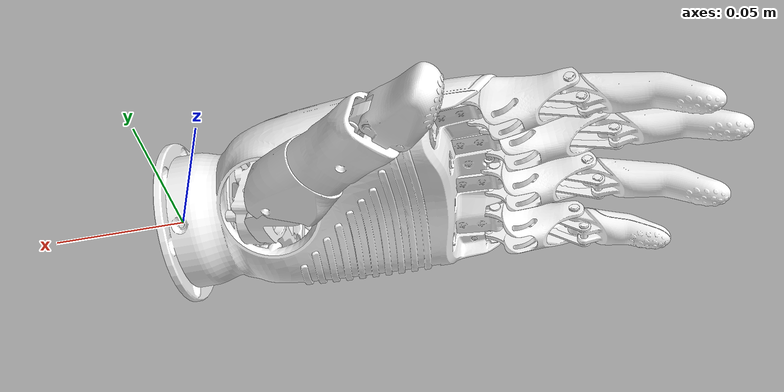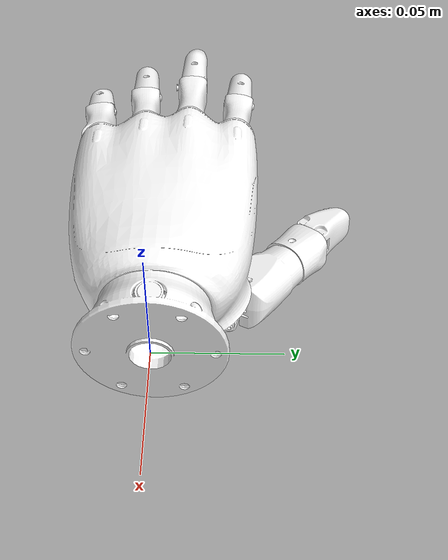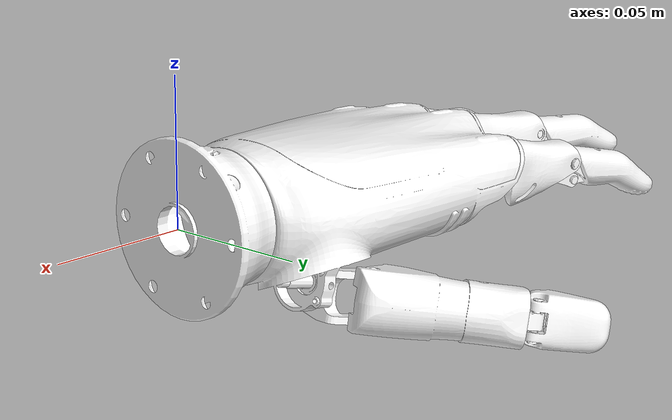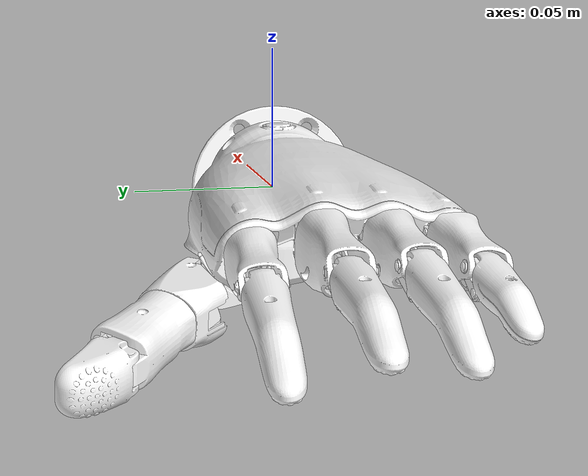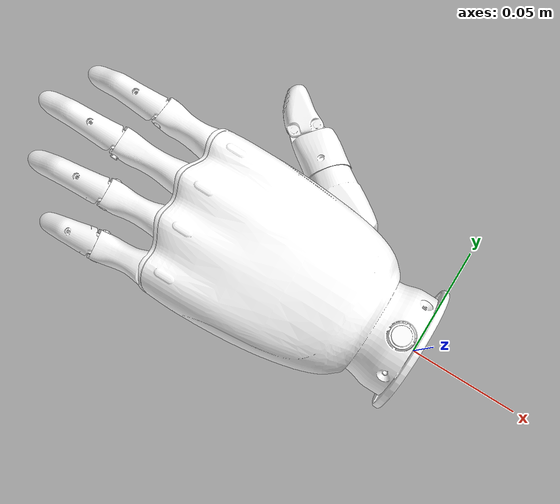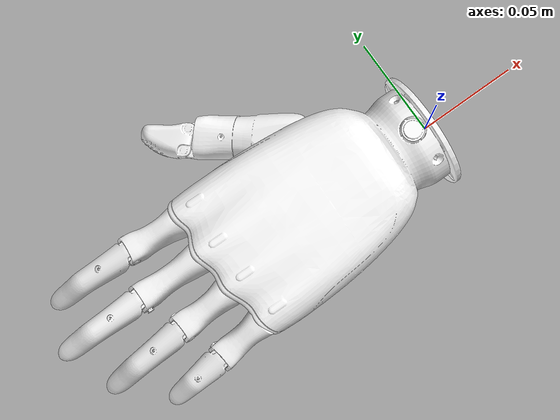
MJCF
<mujoco model="rohand_left">
  <compiler angle="radian"/>

  <asset>
    <mesh name="base_link" content_type="model/stl" file="../assets/meshes_l/base_link.STL"/>
    <mesh name="if_proximal_link" content_type="model/stl" file="../assets/meshes_l/if_proximal_link.STL"/>
    <mesh name="if_distal_link" content_type="model/stl" file="../assets/meshes_l/if_distal_link.STL"/>
    <mesh name="if_connecting_link" content_type="model/stl" file="../assets/meshes_l/if_connecting_link.STL"/>
    <mesh name="mf_proximal_link" content_type="model/stl" file="../assets/meshes_l/mf_proximal_link.STL"/>
    <mesh name="mf_distal_link" content_type="model/stl" file="../assets/meshes_l/mf_distal_link.STL"/>
    <mesh name="mf_connecting_link" content_type="model/stl" file="../assets/meshes_l/mf_connecting_link.STL"/>
    <mesh name="rf_proximal_link" content_type="model/stl" file="../assets/meshes_l/rf_proximal_link.STL"/>
    <mesh name="rf_distal_link" content_type="model/stl" file="../assets/meshes_l/rf_distal_link.STL"/>
    <mesh name="rf_connecting_link" content_type="model/stl" file="../assets/meshes_l/rf_connecting_link.STL"/>
    <mesh name="lf_proximal_link" content_type="model/stl" file="../assets/meshes_l/lf_proximal_link.STL"/>
    <mesh name="lf_distal_link" content_type="model/stl" file="../assets/meshes_l/lf_distal_link.STL"/>
    <mesh name="lf_connecting_link" content_type="model/stl" file="../assets/meshes_l/lf_connecting_link.STL"/>
    <mesh name="th_root_link" content_type="model/stl" file="../assets/meshes_l/th_root_link.STL"/>
    <mesh name="th_slider_connecting_link" content_type="model/stl" file="../assets/meshes_l/th_slider_connecting_link.STL"/>
    <mesh name="th_slider_link" content_type="model/stl" file="../assets/meshes_l/th_slider_link.STL"/>
    <mesh name="th_connecting_link" content_type="model/stl" file="../assets/meshes_l/th_connecting_link.STL"/>
    <mesh name="th_distal_link" content_type="model/stl" file="../assets/meshes_l/th_distal_link.STL"/>
    <mesh name="th_proximal_link" content_type="model/stl" file="../assets/meshes_l/th_proximal_link.STL"/>
  </asset>

  <worldbody>
    <body name="base_link" gravcomp="1">
      <geom type="mesh" rgba="1 1 1 1" mesh="base_link"/>
    </body>
    <body name="if_proximal_link" pos="-0.112403 0.0377703 0.001883" quat="0 1 0 0">
      <inertial pos="-0.0180485 0.00589124 0.00162501" quat="-0.00108635 0.672811 0.0602613 0.737355" mass="0.019352" diaginertia="2.37461e-07 2.32542e-07 1.02725e-07"/>
      <joint name="if_proximal_link" pos="0 0 0" axis="-0.0827338 0.992755 -0.0871348" damping="0.01"/>
      <geom type="mesh" rgba="1 1 1 1" mesh="if_proximal_link"/>
      <body name="if_distal_link" pos="-0.0356862 -0.00314452 0.00264728" quat="0 1 0 0">
        <inertial pos="-0.0186857 -0.00656466 -0.00499978" quat="0.0546836 0.586106 0.00827456 0.808344" mass="0.0368581" diaginertia="5.91184e-07 5.71065e-07 6.25959e-08"/>
        <joint name="if_distal_link" pos="0 0 0" axis="-0.0827338 -0.992755 0.0871348" damping="0.01"/>
        <geom type="mesh" rgba="1 1 1 1" mesh="if_distal_link"/>
      </body>
    </body>
    <body name="if_connecting_link" pos="-0.119956 0.0364852 0.00646672" quat="0 1 0 0">
      <inertial pos="-0.0154547 0.00429075 0.00732543" quat="0.389391 0.55408 0.636672 0.368807" mass="0.00200341" diaginertia="2.67058e-08 2.63769e-08 3.50323e-10"/>
      <joint name="if_connecting_link" pos="0 0 0" axis="0.0827338 -0.992755 0.0871348"/>
      <geom type="mesh" rgba="1 1 1 1" mesh="if_connecting_link"/>
    </body>
    <body name="mf_proximal_link" pos="-0.115671 0.018188 0.00680697" quat="0 1 0 0">
      <inertial pos="-0.0196717 0.00734069 0.00259271" quat="0.515131 0.477513 0.484128 0.521766" mass="0.023774" diaginertia="3.62273e-07 3.54336e-07 1.37141e-07"/>
      <joint name="mf_proximal_link" pos="0 0 0" axis="-0.0132276 0.999913 -7.25942e-05" damping="0.01"/>
      <geom type="mesh" rgba="1 1 1 1" mesh="mf_proximal_link"/>
      <body name="mf_distal_link" pos="-0.0409262 0.000353475 0.00270789">
        <inertial pos="-0.0187149 0.00651045 0.0036032" quat="-0.00711839 0.776004 0.000816387 0.630688" mass="0.0368133" diaginertia="5.91179e-07 5.71055e-07 6.25897e-08"/>
        <joint name="mf_distal_link" pos="0 0 0" axis="-0.0132276 0.999913 -7.25942e-05" damping="0.01"/>
        <geom type="mesh" rgba="1 1 1 1" mesh="mf_distal_link"/>
      </body>
    </body>
    <body name="mf_connecting_link" pos="-0.123126 0.0155867 0.0112065" quat="0 1 0 0">
      <inertial pos="-0.0178866 0.00466437 0.00781748" quat="0.397175 0.579343 0.587087 0.402422" mass="0.00215133" diaginertia="3.73276e-08 3.69894e-08 3.61139e-10"/>
      <joint name="mf_connecting_link" pos="0 0 0" axis="0.0132276 -0.999913 7.25942e-05"/>
      <geom type="mesh" rgba="1 1 1 1" mesh="mf_connecting_link"/>
    </body>
    <body name="rf_proximal_link" pos="-0.113666 -0.00185704 0.00606228" quat="0 1 0 0">
      <inertial pos="-0.0170389 0.0085778 0.00226188" quat="0.0209995 0.675147 -0.0189908 0.737139" mass="0.019352" diaginertia="2.37462e-07 2.32542e-07 1.02725e-07"/>
      <joint name="rf_proximal_link" pos="0 0 0" axis="0.056557 0.998399 -7.94204e-05" damping="0.01"/>
      <geom type="mesh" rgba="1 1 1 1" mesh="rf_proximal_link"/>
      <body name="rf_distal_link" pos="-0.0357665 0.00202635 0.00262545">
        <inertial pos="-0.0176152 0.00863792 0.00568697" quat="0.0138781 0.810145 -0.0274025 0.585424" mass="0.0368582" diaginertia="5.91185e-07 5.71066e-07 6.25962e-08"/>
        <joint name="rf_distal_link" pos="0 0 0" axis="0.056557 0.998399 -7.94204e-05" damping="0.01"/>
        <geom type="mesh" rgba="1 1 1 1" mesh="rf_distal_link"/>
      </body>
    </body>
    <body name="rf_connecting_link" pos="-0.120922 -0.0049721 0.0104619" quat="0 1 0 0">
      <inertial pos="-0.0147431 0.00574363 0.00778288" quat="0.389258 0.613805 0.580048 0.367785" mass="0.00200341" diaginertia="2.67058e-08 2.63769e-08 3.50323e-10"/>
      <joint name="rf_connecting_link" pos="0 0 0" axis="-0.056557 -0.998399 7.94204e-05"/>
      <geom type="mesh" rgba="1 1 1 1" mesh="rf_connecting_link"/>
    </body>
    <body name="lf_proximal_link" pos="-0.110379 -0.0220139 0.00417345" quat="0 1 0 0">
      <inertial pos="-0.0147966 0.00917667 0.00300267" quat="0.0123721 0.690959 -0.0721875 0.719175" mass="0.0177935" diaginertia="1.82337e-07 1.76566e-07 9.42095e-08"/>
      <joint name="lf_proximal_link" pos="0 0 0" axis="0.117591 0.989231 0.08715" damping="0.01"/>
      <geom type="mesh" rgba="1 1 1 1" mesh="lf_proximal_link"/>
      <body name="lf_distal_link" pos="-0.0315591 0.00344977 0.00342448">
        <inertial pos="-0.0111242 0.00851258 0.00510903" quat="-0.0033804 0.805673 -0.0737618 0.587741" mass="0.0214911" diaginertia="1.28529e-07 1.16916e-07 2.93976e-08"/>
        <joint name="lf_distal_link" pos="0 0 0" axis="0.117591 0.989231 0.08715" damping="0.01"/>
        <geom type="mesh" rgba="1 1 1 1" mesh="lf_distal_link"/>
      </body>
    </body>
    <body name="lf_connecting_link" pos="-0.117384 -0.0259413 0.00832091" quat="0 1 0 0">
      <inertial pos="-0.0127597 0.0057868 0.00775507" quat="0.354095 0.658345 0.555114 0.364756" mass="0.00176993" diaginertia="1.94958e-08 1.92587e-08 2.55967e-10"/>
      <joint name="lf_connecting_link" pos="0 0 0" axis="-0.117591 -0.989231 -0.08715"/>
      <geom type="mesh" rgba="1 1 1 1" mesh="lf_connecting_link"/>
    </body>
    <body name="th_root_link" pos="-0.025193 0.019558 -0.018539" quat="-3.67321e-06 1 0 0">
      <inertial pos="-0.0181653 -0.00613768 0.00621049" quat="0.177574 0.373764 0.705584 0.575256" mass="0.0708321" diaginertia="0.000154618 0.000128515 6.37189e-05"/>
      <joint name="th_root_link" pos="0 0 0" axis="-0.976159 -0.01293 0.21667" range="0 1.57" damping="0.05"/>
      <geom type="mesh" rgba="1 1 1 1" mesh="th_root_link"/>
      <body name="th_slider_connecting_link" pos="-0.03309 -0.015816 0.018049">
        <inertial pos="-0.000300374 -0.00530811 -0.00782073" quat="0.475895 0.617982 -0.381951 0.495717" mass="0.886531" diaginertia="1.54015e-09 1.3854e-09 1.64213e-10"/>
        <joint name="th_slider_connecting_link" pos="0 0 0" axis="-0.21669 0 -0.97624" damping="0.05"/>
        <geom type="mesh" rgba="1 1 1 1" mesh="th_slider_connecting_link"/>
        <body name="th_slider_link" pos="0.0027796 -0.010616 -0.00041217">
          <inertial pos="-0.00853933 -0.00592336 -0.0061965" quat="0.22509 0.36502 0.670307 0.605626" mass="0.03164989" diaginertia="1.74468e-07 1.47922e-07 3.02562e-08"/>
          <joint name="th_slider_link" pos="0 0 0" axis="-0.21669 0 -0.97624" damping="0.05"/>
          <geom type="mesh" rgba="1 1 1 1" mesh="th_slider_link"/>
          <body name="th_connecting_link" pos="-0.0242724 -0.021535 0.0020074">
            <inertial pos="-0.00506317 -0.00240243 -0.0035032" quat="0.307203 0.437935 0.636877 0.555181" mass="0.02406527" diaginertia="6.93499e-09 5.13371e-09 3.44337e-09"/>
            <joint name="th_connecting_link" pos="0 0 0" axis="0.216693 0 0.97624" damping="0.05"/>
            <geom type="mesh" rgba="1 1 1 1" mesh="th_connecting_link"/>
            <body name="th_distal_link" pos="-0.0112139 -0.0043927 -0.00957763">
              <inertial pos="-0.00767526 -0.0022715 0.00910718" quat="0.953161 -0.0226723 0.101691 -0.283953" mass="0.182314" diaginertia="1.23939e-05 1.23781e-05 6.36213e-6"/>
              <joint name="th_distal_link" pos="0 0 0" axis="0.216691 0 0.97624"/>
              <geom type="mesh" rgba="1 1 1 1" mesh="th_distal_link"/>
            </body>
          </body>
          <body name="th_proximal_link" pos="0.00072735 8.441e-05 -0.0082537">
            <inertial pos="-0.0158094 -0.00708213 0.00350495" quat="-0.186965 0.757272 0.150349 0.607436" mass="0.0544275" diaginertia="2.19932e-04 1.98161e-04 3.24967e-05"/>
            <joint name="th_proximal_link" pos="0 0 0" axis="0.760769 0.626669 -0.16887" type="slide" damping="0.05"/>
            <geom type="mesh" rgba="1 1 1 1" mesh="th_proximal_link"/>
          </body>
        </body>
      </body>
    </body>
  </worldbody>
  <contact>
    <exclude body1="base_link" body2="if_proximal_link"/>
    <exclude body1="base_link" body2="if_distal_link"/>
    <exclude body1="base_link" body2="if_connecting_link"/>
    <exclude body1="if_connecting_link" body2="if_proximal_link"/>
    <exclude body1="if_connecting_link" body2="if_distal_link"/>
    <exclude body1="if_proximal_link" body2="if_distal_link"/>
    <exclude body1="base_link" body2="mf_proximal_link"/>
    <exclude body1="base_link" body2="mf_distal_link"/>
    <exclude body1="base_link" body2="mf_connecting_link"/>
    <exclude body1="mf_connecting_link" body2="mf_proximal_link"/>
    <exclude body1="mf_connecting_link" body2="mf_distal_link"/>
    <exclude body1="mf_proximal_link" body2="mf_distal_link"/>
    <exclude body1="base_link" body2="rf_proximal_link"/>
    <exclude body1="base_link" body2="rf_distal_link"/>
    <exclude body1="base_link" body2="rf_connecting_link"/>
    <exclude body1="rf_connecting_link" body2="rf_proximal_link"/>
    <exclude body1="rf_connecting_link" body2="rf_distal_link"/>
    <exclude body1="rf_proximal_link" body2="rf_distal_link"/>
    <exclude body1="base_link" body2="lf_proximal_link"/>
    <exclude body1="base_link" body2="lf_distal_link"/>
    <exclude body1="base_link" body2="lf_connecting_link"/>
    <exclude body1="lf_connecting_link" body2="lf_proximal_link"/>
    <exclude body1="lf_connecting_link" body2="lf_distal_link"/>
    <exclude body1="lf_proximal_link" body2="lf_distal_link"/>
    <exclude body1="th_root_link" body2="base_link"/>
    <exclude body1="th_root_link" body2="th_slider_link"/>
    <exclude body1="th_root_link" body2="th_connecting_link"/>
    <exclude body1="th_root_link" body2="th_distal_link"/>
    <exclude body1="th_root_link" body2="th_slider_link"/>
    <exclude body1="th_root_link" body2="th_proximal_link"/>
    <exclude body1="th_root_link" body2="th_slider_connecting_link"/>
    <exclude body1="th_slider_connecting_link" body2="base_link"/>
    <exclude body1="th_slider_connecting_link" body2="th_slider_link"/>
    <exclude body1="th_slider_connecting_link" body2="th_connecting_link"/>
    <exclude body1="th_slider_connecting_link" body2="th_distal_link"/>
    <exclude body1="th_slider_connecting_link" body2="th_proximal_link"/>
    <exclude body1="th_slider_link" body2="base_link"/>
    <exclude body1="th_slider_link" body2="th_connecting_link"/>
    <exclude body1="th_slider_link" body2="th_distal_link"/>
    <exclude body1="th_slider_link" body2="th_proximal_link"/>
    <exclude body1="th_connecting_link" body2="base_link"/>
    <exclude body1="th_connecting_link" body2="th_distal_link"/>
    <exclude body1="th_connecting_link" body2="th_proximal_link"/>
    <exclude body1="th_distal_link" body2="base_link"/>
    <exclude body1="th_distal_link" body2="th_proximal_link"/>
    <exclude body1="th_proximal_link" body2="base_link"/>
  </contact>
  <equality>
    <connect body1="if_distal_link" body2="if_connecting_link" anchor="-0.003 -0.002 -0.007" solimp="0.99 0.99 0.001" solref="0.005 1"/>
    <connect body1="mf_distal_link" body2="mf_connecting_link" anchor="-0.003 0.005 0.007" solimp="0.99 0.99 0.001" solref="0.005 1"/>
    <connect body1="rf_distal_link" body2="rf_connecting_link" anchor="-0.003 0.005 0.007" solimp="0.99 0.99 0.001" solref="0.005 1"/>
    <connect body1="lf_distal_link" body2="lf_connecting_link" anchor="-0.003 0.005 0.007" solimp="0.99 0.99 0.001" solref="0.001 1"/>
    <connect body1="th_proximal_link" body2="th_root_link" anchor="0.009 0.0075 0.007" solimp="0.95 0.99 0.001" solref="0.005 1"/>
    <connect body1="th_distal_link" body2="th_proximal_link" anchor="-0.005 0.007 0.015" solimp="0.8 0.95 0.001" solref="0.005 1"/>
  </equality>
  <actuator>
    <position name="index_finger" joint="if_proximal_link" kp="1" ctrlrange="0 1.45"/>
    <position name="middle_finger" joint="mf_proximal_link" kp="1" ctrlrange="0 1.50"/>
    <position name="ring_finger" joint="rf_proximal_link" kp="1" ctrlrange="0 1.44"/>
    <position name="little_finger" joint="lf_proximal_link" kp="1" ctrlrange="0 1.44"/>
    <position name="thumb_root" joint="th_root_link" kp="1" ctrlrange="0 1.57"/>
    <position name="thumb" joint="th_slider_connecting_link" kp="1" ctrlrange="0 1.327"/>
  </actuator>
</mujoco>
